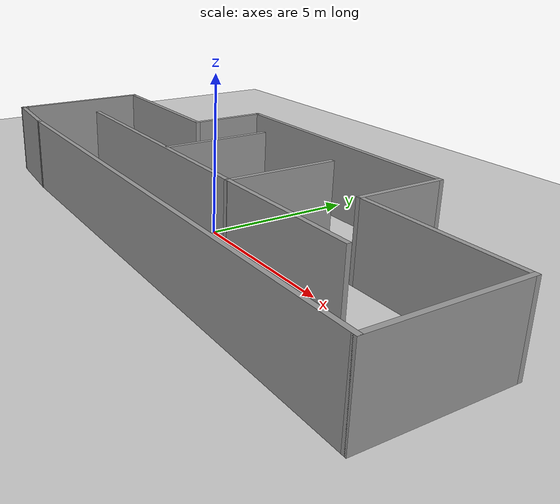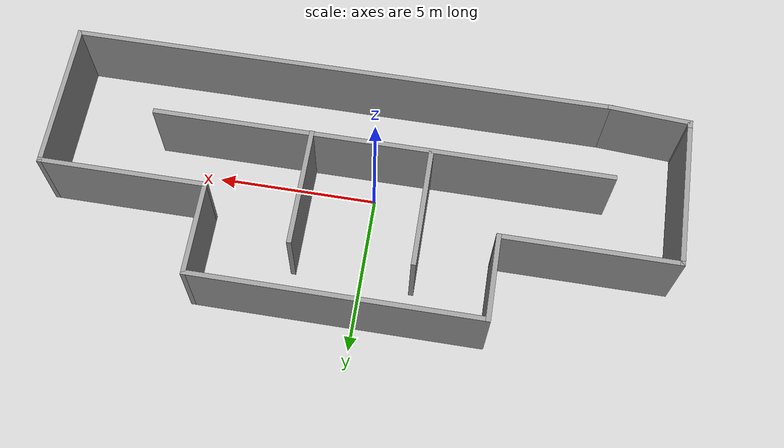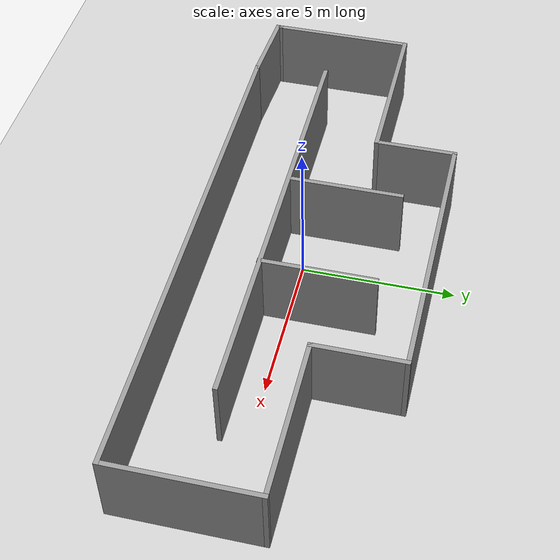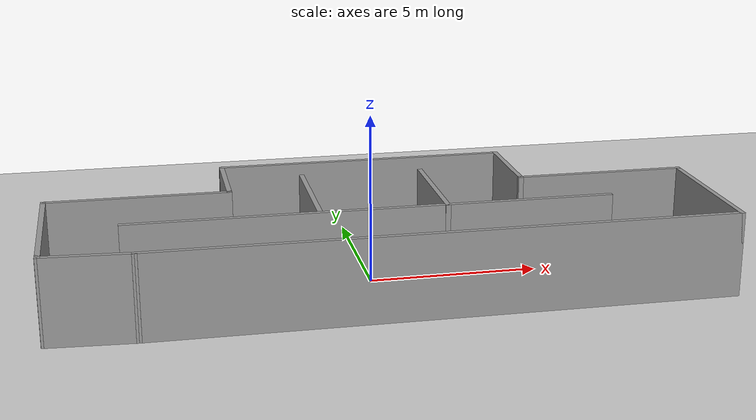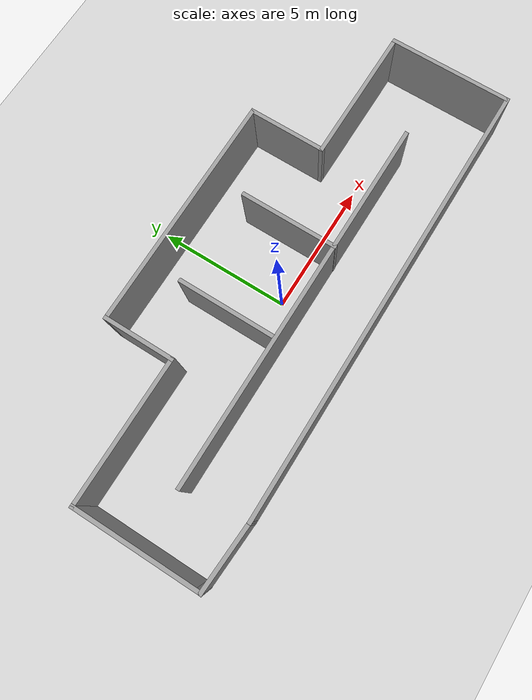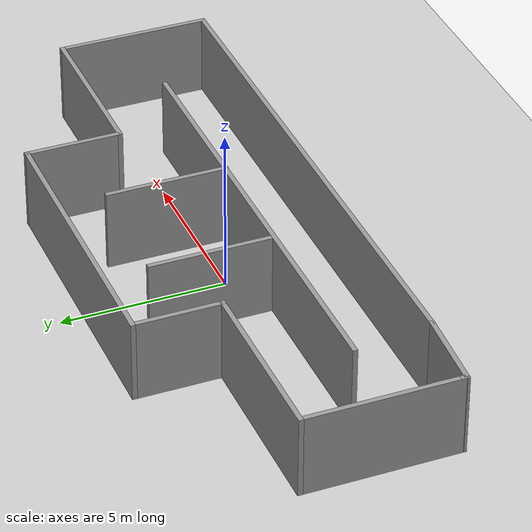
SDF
<sdf version="1.6">
 <world name="default">
  <light name="sun" type="directional">
   <pose>0 0 10 0 -0 0</pose>
   <diffuse>0.8 0.8 0.8 1</diffuse>
   <specular>0.2 0.2 0.2 1</specular>
   <attenuation>
    <range>1000</range>
    <constant>0.9</constant>
    <linear>0.01</linear>
    <quadratic>0.001</quadratic>
   </attenuation>
   <direction>-0.5 0.1 -0.9</direction>
  </light>
  <model name="ground_plane">
   <static>1</static>
   <link name="link">
    <collision name="collision">
     <geometry><plane><normal>0 0 1</normal><size>100 100</size></plane></geometry>
     <surface><friction><ode><mu>100</mu><mu2>50</mu2></ode></friction></surface>
    </collision>
    <visual name="visual">
     <cast_shadows>0</cast_shadows>
     <geometry><plane><normal>0 0 1</normal><size>100 100</size></plane></geometry>
     <material>
      <script><uri>file://media/materials/scripts/gazebo.material</uri><name>Gazebo/Grey</name></script>
     </material>
    </visual>
   </link>
  </model>
  <gravity>0 0 -9.8</gravity>
  <magnetic_field>6e-06 2.3e-05 -4.2e-05</magnetic_field>
  <atmosphere type="adiabatic"/>
  <physics name="default_physics" default="0" type="ode">
   <max_step_size>0.001</max_step_size>
   <real_time_factor>1</real_time_factor>
   <real_time_update_rate>1000</real_time_update_rate>
  </physics>
  <scene><ambient>0.4 0.4 0.4 1</ambient><background>0.7 0.7 0.7 1</background><shadows>1</shadows></scene>
  <audio><device>default</device></audio>
  <spherical_coordinates>
   <surface_model>EARTH_WGS84</surface_model>
   <latitude_deg>0</latitude_deg>
   <longitude_deg>0</longitude_deg>
   <elevation>0</elevation>
   <heading_deg>0</heading_deg>
  </spherical_coordinates>
  <model name="cloister">
   <pose>0.368433 0.492056 0 0 -0 0</pose>
   <link name="Wall_25">
    <collision name="Wall_25_Collision">
     <geometry><box><size>17 0.15 2.5</size></box></geometry>
     <pose>0 0 1.25 0 -0 0</pose>
    </collision>
    <visual name="Wall_25_Visual">
     <pose>0 0 1.25 0 -0 0</pose>
     <geometry><box><size>17 0.15 2.5</size></box></geometry>
     <material>
      <script><uri>file://media/materials/scripts/gazebo.material</uri><name>Gazebo/Grey</name></script>
      <ambient>1 1 1 1</ambient>
     </material>
     <meta><layer>0</layer></meta>
    </visual>
    <pose>1.22722 -3.72278 0 0 -0 0</pose>
   </link>
   <link name="Wall_26">
    <collision name="Wall_26_Collision">
     <geometry><box><size>4.75 0.15 2.5</size></box></geometry>
     <pose>0 0 1.25 0 -0 0</pose>
    </collision>
    <visual name="Wall_26_Visual">
     <pose>0 0 1.25 0 -0 0</pose>
     <geometry><box><size>4.75 0.15 2.5</size></box></geometry>
     <material>
      <script><uri>file://media/materials/scripts/gazebo.material</uri><name>Gazebo/Grey</name></script>
      <ambient>1 1 1 1</ambient>
     </material>
     <meta><layer>0</layer></meta>
    </visual>
    <pose>9.65222 -1.42278 0 0 -0 1.5708</pose>
   </link>
   <link name="Wall_27">
    <collision name="Wall_27_Collision">
     <geometry><box><size>5.25 0.15 2.5</size></box></geometry>
     <pose>0 0 1.25 0 -0 0</pose>
    </collision>
    <visual name="Wall_27_Visual">
     <pose>0 0 1.25 0 -0 0</pose>
     <geometry><box><size>5.25 0.15 2.5</size></box></geometry>
     <material>
      <script><uri>file://media/materials/scripts/gazebo.material</uri><name>Gazebo/Grey</name></script>
      <ambient>1 1 1 1</ambient>
     </material>
     <meta><layer>0</layer></meta>
    </visual>
    <pose>7.10222 0.877221 0 0 -0 3.14159</pose>
   </link>
   <link name="Wall_29">
    <collision name="Wall_29_Collision">
     <geometry><box><size>3 0.15 2.5</size></box></geometry>
     <pose>0 0 1.25 0 -0 0</pose>
    </collision>
    <visual name="Wall_29_Visual">
     <pose>0 0 1.25 0 -0 0</pose>
     <geometry><box><size>3 0.15 2.5</size></box></geometry>
     <material>
      <script><uri>file://media/materials/scripts/gazebo.material</uri><name>Gazebo/Grey</name></script>
      <ambient>1 1 1 1</ambient>
     </material>
     <meta><layer>0</layer></meta>
    </visual>
    <pose>4.55222 2.30222 0 0 -0 1.5708</pose>
   </link>
   <link name="Wall_30">
    <collision name="Wall_30_Collision">
     <geometry><box><size>9 0.15 2.5</size></box></geometry>
     <pose>0 0 1.25 0 -0 0</pose>
    </collision>
    <visual name="Wall_30_Visual">
     <pose>0 0 1.25 0 -0 0</pose>
     <geometry><box><size>9 0.15 2.5</size></box></geometry>
     <material>
      <script><uri>file://media/materials/scripts/gazebo.material</uri><name>Gazebo/Grey</name></script>
      <ambient>1 1 1 1</ambient>
     </material>
     <meta><layer>0</layer></meta>
    </visual>
    <pose>0.127221 3.72722 0 0 -0 3.14159</pose>
   </link>
   <link name="Wall_31">
    <collision name="Wall_31_Collision">
     <geometry><box><size>2.75 0.15 2.5</size></box></geometry>
     <pose>0 0 1.25 0 -0 0</pose>
    </collision>
    <visual name="Wall_31_Visual">
     <pose>0 0 1.25 0 -0 0</pose>
     <geometry><box><size>2.75 0.15 2.5</size></box></geometry>
     <material>
      <script><uri>file://media/materials/scripts/gazebo.material</uri><name>Gazebo/Grey</name></script>
      <ambient>1 1 1 1</ambient>
     </material>
     <meta><layer>0</layer></meta>
    </visual>
    <pose>-4.29778 2.42722 0 0 -0 -1.5708</pose>
   </link>
   <link name="Wall_32">
    <collision name="Wall_32_Collision">
     <geometry><box><size>5.5 0.15 2.5</size></box></geometry>
     <pose>0 0 1.25 0 -0 0</pose>
    </collision>
    <visual name="Wall_32_Visual">
     <pose>0 0 1.25 0 -0 0</pose>
     <geometry><box><size>5.5 0.15 2.5</size></box></geometry>
     <material>
      <script><uri>file://media/materials/scripts/gazebo.material</uri><name>Gazebo/Grey</name></script>
      <ambient>1 1 1 1</ambient>
     </material>
     <meta><layer>0</layer></meta>
    </visual>
    <pose>-6.97278 1.12722 0 0 -0 3.14159</pose>
   </link>
   <link name="Wall_33">
    <collision name="Wall_33_Collision">
     <geometry><box><size>4.75 0.15 2.5</size></box></geometry>
     <pose>0 0 1.25 0 -0 0</pose>
    </collision>
    <visual name="Wall_33_Visual">
     <pose>0 0 1.25 0 -0 0</pose>
     <geometry><box><size>4.75 0.15 2.5</size></box></geometry>
     <material>
      <script><uri>file://media/materials/scripts/gazebo.material</uri><name>Gazebo/Grey</name></script>
      <ambient>1 1 1 1</ambient>
     </material>
     <meta><layer>0</layer></meta>
    </visual>
    <pose>-9.64778 -1.17278 0 0 -0 -1.5708</pose>
   </link>
   <link name="Wall_34">
    <collision name="Wall_34_Collision">
     <geometry><box><size>0.25 0.15 2.5</size></box></geometry>
     <pose>0 0 1.25 0 -0 0</pose>
    </collision>
    <visual name="Wall_34_Visual">
     <pose>0 0 1.25 0 -0 0</pose>
     <geometry><box><size>0.25 0.15 2.5</size></box></geometry>
     <material>
      <script><uri>file://media/materials/scripts/gazebo.material</uri><name>Gazebo/Grey</name></script>
      <ambient>1 1 1 1</ambient>
     </material>
     <meta><layer>0</layer></meta>
    </visual>
    <pose>-9.64778 -3.52278 0 0 -0 -1.5708</pose>
   </link>
   <link name="Wall_35">
    <collision name="Wall_35_Collision">
     <geometry><box><size>2.60459 0.15 2.5</size></box></geometry>
     <pose>0 0 1.25 0 -0 0</pose>
    </collision>
    <visual name="Wall_35_Visual">
     <pose>0 0 1.25 0 -0 0</pose>
     <geometry><box><size>2.60459 0.15 2.5</size></box></geometry>
     <material>
      <script><uri>file://media/materials/scripts/gazebo.material</uri><name>Gazebo/Grey</name></script>
      <ambient>1 1 1 1</ambient>
     </material>
     <meta><layer>0</layer></meta>
    </visual>
    <pose>-8.42278 -3.64778 0 0 -0 -0.061148</pose>
   </link>
   <link name="Wall_37">
    <collision name="Wall_37_Collision">
     <geometry><box><size>14.25 0.15 2.5</size></box></geometry>
     <pose>0 0 1.25 0 -0 0</pose>
    </collision>
    <visual name="Wall_37_Visual">
     <pose>0 0 1.25 0 -0 0</pose>
     <geometry><box><size>14.25 0.15 2.5</size></box></geometry>
     <material>
      <script><uri>file://media/materials/scripts/gazebo.material</uri><name>Gazebo/Grey</name></script>
      <ambient>1 1 1 1</ambient>
     </material>
     <meta><layer>0</layer></meta>
    </visual>
    <pose>-0.44511 -1.32664 0 0 -0 0</pose>
   </link>
   <link name="Wall_39">
    <collision name="Wall_39_Collision">
     <geometry><box><size>3.75 0.15 2.5</size></box></geometry>
     <pose>0 0 1.25 0 -0 0</pose>
    </collision>
    <visual name="Wall_39_Visual">
     <pose>0 0 1.25 0 -0 0</pose>
     <geometry><box><size>3.75 0.15 2.5</size></box></geometry>
     <material>
      <script><uri>file://media/materials/scripts/gazebo.material</uri><name>Gazebo/Grey</name></script>
      <ambient>1 1 1 1</ambient>
     </material>
     <meta><layer>0</layer></meta>
    </visual>
    <pose>-1.96825 0.56081 0 0 -0 1.5708</pose>
   </link>
   <link name="Wall_41">
    <collision name="Wall_41_Collision">
     <geometry><box><size>3.75 0.15 2.5</size></box></geometry>
     <pose>0 0 1.25 0 -0 0</pose>
    </collision>
    <visual name="Wall_41_Visual">
     <pose>0 0 1.25 0 -0 0</pose>
     <geometry><box><size>3.75 0.15 2.5</size></box></geometry>
     <material>
      <script><uri>file://media/materials/scripts/gazebo.material</uri><name>Gazebo/Grey</name></script>
      <ambient>1 1 1 1</ambient>
     </material>
     <meta><layer>0</layer></meta>
    </visual>
    <pose>1.72215 0.458823 0 0 -0 -1.5708</pose>
   </link>
   <static>1</static>
  </model>
 </world>
</sdf>
